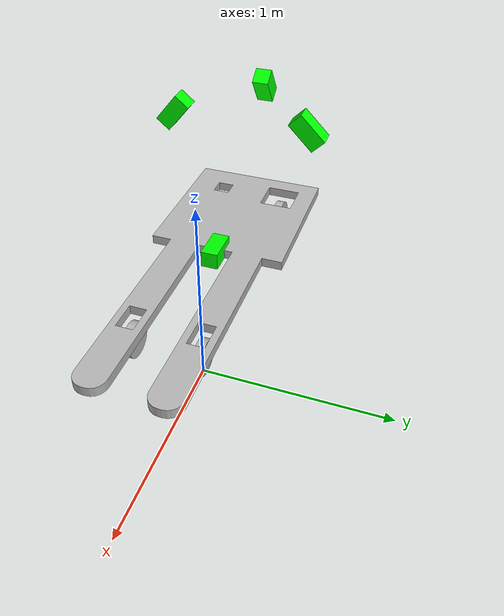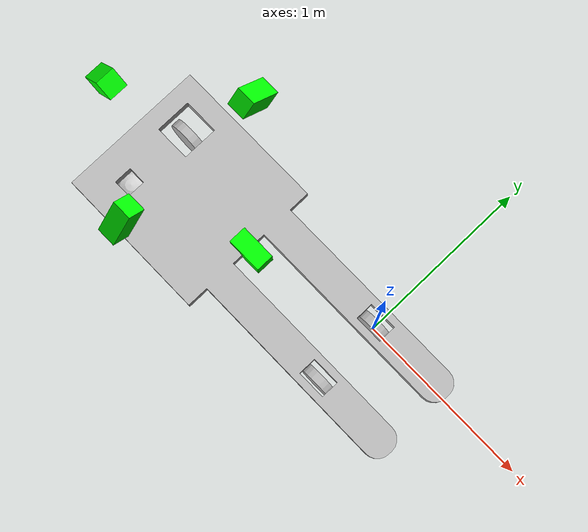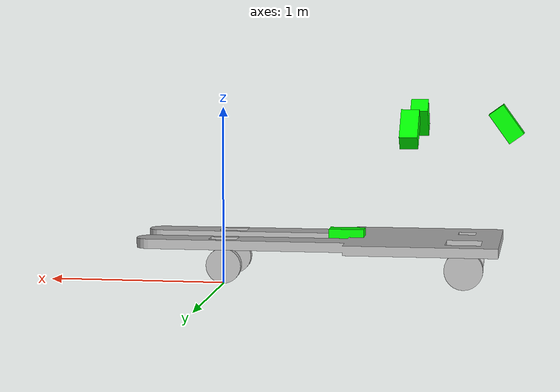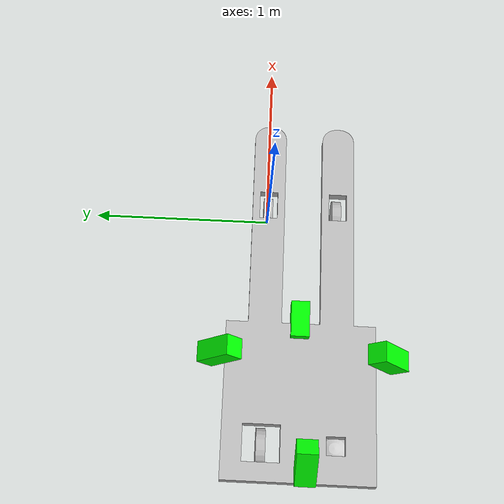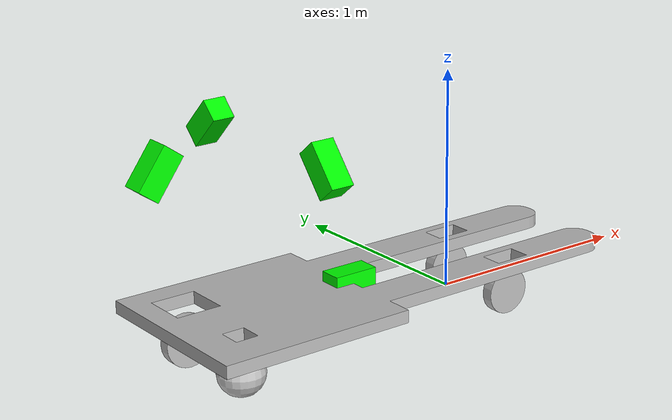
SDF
<?xml version="1.0" ?>
<sdf version="1.6">
  <model name="forklift">
    <static>false</static>

    <!-- Main robot body: rename 'chassis' to 'base_link' -->
    <link name="base_link">
      <!-- Raised above the ground -->
      <pose>0 0.0 0.4 0 0 0</pose>
      <inertial>
        <mass>10</mass>
        <pose>0 0 0 0 0 0</pose>
        <inertia>
          <ixx>1.6</ixx>  <iyy>3.4</iyy>  <izz>4.2</izz>
          <ixy>0</ixy>    <ixz>0</ixz>    <iyz>0</iyz>
        </inertia>
      </inertial>

      <collision name="body_collision">
        <!-- SAME offset and rotation you used for the visual -->
        <pose>0 0.0 -0.2 0 0 3.14159</pose>

        <geometry>
          <mesh>
            <!-- use package:// or model:// once the mesh is installed; file:// is fine for testing -->
            <!-- kina_body_1_0_simple.stl kina_body_1_1.stl -->
            <uri>file:///home/saidul/Desktop/fork_ws/src/harmonic_sim/meshes/kina_body_1_0_simple.stl</uri>
            <scale>0.001 0.001 0.001</scale>
          </mesh>
        </geometry>
      </collision>

        <!-- NEW forklift body visual -->
    <visual name="body_visual">
      <pose>0 0.0 -0.2 0 0 3.14159</pose>        <!-- offset if STL origin ≠ chassis origin -->
      <geometry>
        <mesh>
          <!-- “model://forklift” resolves to the folder that holds model.config -->
          <uri>file:///home/saidul/Desktop/fork_ws/src/harmonic_sim/meshes/kina_body_1_0_simple.stl</uri>
          <scale>0.001 0.001 0.001</scale>
        </mesh>

      </geometry>
      </visual>

      <!-- Lidar sensor is part of base_link, but publishes data in 'lidar_link' frame -->
      <sensor name="lidar_sensor" type="ray">
        <pose>0 0 0.2 0 0 3.14159</pose>
        <update_rate>10</update_rate>
        <visualize>false</visualize> <!-- true -->
        <always_on>true</always_on>
        <ray>
          <scan>
            <horizontal>
              <samples>360</samples>
              <resolution>1</resolution>
              <min_angle>-3.14159</min_angle>
              <max_angle>3.14159</max_angle>
            </horizontal>
          </scan>
          <range>
            <min>0.3</min>
            <max>20</max>
            <resolution>0.01</resolution>
          </range>
        </ray>
        <plugin name="lidar_plugin" filename="libgazebo_ros_ray_sensor.so">
          <ros>
            <use_sim_time>true</use_sim_time>
            <remapping>~/out:=scan</remapping>
          </ros>
          <output_type>sensor_msgs/LaserScan</output_type>
          <frame_name>lidar_link</frame_name>
        </plugin>
      </sensor>

    </link>

<!--  Front camera (mirrored & now +180° about Z) -->
<link name="front_cam_link">
  <!-- new pose: -1.585  -0.19  0.91  0  2.20  (3.14 + 3.14159 = 6.28159) -->
  <pose>-1.585 -0.19 0.91 0 2.20 6.28159</pose>
  <inertial>
    <mass>0.05</mass>
    <inertia>
      <ixx>1e-5</ixx><iyy>1e-5</iyy><izz>1e-5</izz>
      <ixy>0</ixy><ixz>0</ixz><iyz>0</iyz>
    </inertia>
  </inertial>

  <visual name="front_cam_housing">
    <geometry>
      <box>
        <size>0.20 0.10 0.10</size>
      </box>
    </geometry>
    <material>
      <ambient>0 1 0 1</ambient>
      <diffuse>0 1 0 1</diffuse>
    </material>
  </visual>

  <sensor name="front_cam_depth" type="depth">
    <pose>0 0 0 0 0 0</pose>
    <update_rate>30</update_rate>
    <visualize>true</visualize>
    <always_on>true</always_on>

    <camera>
      <horizontal_fov>1.3962634</horizontal_fov>
      <image>
        <width>640</width>
        <height>480</height>
        <format>R8G8B8</format>
      </image>
      <clip>
        <near>0.1</near>
        <far>10</far>
      </clip>
      <depth_camera/>
    </camera>

    <plugin name="front_cam_controller" filename="libgazebo_ros_camera.so">
      <ros>
        <namespace>front_cam</namespace>
        <use_sim_time>true</use_sim_time>
      </ros>
      <camera_name>front_cam</camera_name>
      <image_topic_name>image_raw</image_topic_name>
      <depth_image_topic_name>depth/image_raw</depth_image_topic_name>
      <point_cloud_topic_name>points</point_cloud_topic_name>
      <camera_info_topic_name>camera_info</camera_info_topic_name>
      <frame_name>front_cam_link</frame_name>
      <point_cloud_cutoff>0.2</point_cloud_cutoff>
    </plugin>
  </sensor>
</link>

<joint name="front_cam_joint" type="fixed">
  <parent>base_link</parent>
  <child>front_cam_link</child>
</joint>

<!--  Back camera (mirrored & now +180° about Z) -->
<link name="back_cam_link">
  <!-- new pose: -0.685  -0.19  0.25  0  0  (3.14 + 3.14159 = 6.28159) -->
  <pose>-0.685 -0.19 0.25 0 0 6.28159</pose>
  <inertial>
    <mass>0.05</mass>
    <inertia>
      <ixx>1e-5</ixx><iyy>1e-5</iyy><izz>1e-5</izz>
      <ixy>0</ixy><ixz>0</ixz><iyz>0</iyz>
    </inertia>
  </inertial>

  <visual name="back_cam_housing">
    <geometry>
      <box>
        <size>0.20 0.10 0.10</size>
      </box>
    </geometry>
    <material>
      <ambient>0 1 0 1</ambient>
      <diffuse>0 1 0 1</diffuse>
    </material>
  </visual>

  <sensor name="back_cam_depth" type="depth">
    <pose>0 0 0 0 0 0</pose>
    <update_rate>30</update_rate>
    <visualize>true</visualize>
    <always_on>true</always_on>

    <camera>
      <horizontal_fov>1.3962634</horizontal_fov>
      <image>
        <width>640</width>
        <height>480</height>
        <format>R8G8B8</format>
      </image>
      <clip>
        <near>0.1</near>
        <far>10</far>
      </clip>
      <depth_camera/>
    </camera>

    <plugin name="back_cam_controller" filename="libgazebo_ros_camera.so">
      <ros>
        <namespace>back_cam</namespace>
        <use_sim_time>true</use_sim_time>
      </ros>
      <camera_name>back_cam</camera_name>
      <image_topic_name>image_raw</image_topic_name>
      <depth_image_topic_name>depth/image_raw</depth_image_topic_name>
      <point_cloud_topic_name>points</point_cloud_topic_name>
      <camera_info_topic_name>camera_info</camera_info_topic_name>
      <frame_name>back_cam_link</frame_name>
      <point_cloud_cutoff>0.2</point_cloud_cutoff>
    </plugin>
  </sensor>
</link>

<joint name="back_cam_joint" type="fixed">
  <parent>base_link</parent>
  <child>back_cam_link</child>
</joint>

<!--  Left camera (mirrored & now +180° about Z) -->
<link name="left_cam_link">
  <!-- new pose: -1.07  -0.57  0.91  0  2.26  (–1.57 + 3.14159 = 1.57159) -->
  <pose>-1.07 -0.57 0.91 0 2.26 1.57159</pose>
  <inertial>
    <mass>0.05</mass>
    <inertia>
      <ixx>1e-5</ixx><iyy>1e-5</iyy><izz>1e-5</izz>
      <ixy>0</ixy><ixz>0</ixz><iyz>0</iyz>
    </inertia>
  </inertial>

  <visual name="left_cam_housing">
    <geometry>
      <box>
        <size>0.20 0.10 0.10</size>
      </box>
    </geometry>
    <material>
      <ambient>0 1 0 1</ambient>
      <diffuse>0 1 0 1</diffuse>
    </material>
  </visual>

  <sensor name="left_cam_depth" type="depth">
    <pose>0 0 0 0 0 0</pose>
    <update_rate>30</update_rate>
    <visualize>true</visualize>
    <always_on>true</always_on>

    <camera>
      <horizontal_fov>1.3962634</horizontal_fov>
      <image>
        <width>640</width>
        <height>480</height>
        <format>R8G8B8</format>
      </image>
      <clip>
        <near>0.1</near>
        <far>10</far>
      </clip>
      <depth_camera/>
    </camera>

    <plugin name="left_cam_controller" filename="libgazebo_ros_camera.so">
      <ros>
        <namespace>left_cam</namespace>
        <use_sim_time>true</use_sim_time>
      </ros>
      <camera_name>left_cam</camera_name>
      <image_topic_name>image_raw</image_topic_name>
      <depth_image_topic_name>depth/image_raw</depth_image_topic_name>
      <point_cloud_topic_name>points</point_cloud_topic_name>
      <camera_info_topic_name>camera_info</camera_info_topic_name>
      <frame_name>left_cam_link</frame_name>
      <point_cloud_cutoff>0.2</point_cloud_cutoff>
    </plugin>
  </sensor>
</link>

<joint name="left_cam_joint" type="fixed">
  <parent>base_link</parent>
  <child>left_cam_link</child>
</joint>

<!--  Right camera (mirrored & now +180° about Z) -->
<link name="right_cam_link">
  <!-- new pose: -1.07   0.23  0.91  0  2.357  (1.57 + 3.14159 = 4.71159) -->
  <pose>-1.07 0.23 0.91 0 2.357 4.71159</pose>
  <inertial>
    <mass>0.05</mass>
    <inertia>
      <ixx>1e-5</ixx><iyy>1e-5</iyy><izz>1e-5</izz>
      <ixy>0</ixy><ixz>0</ixz><iyz>0</iyz>
    </inertia>
  </inertial>

  <visual name="right_cam_housing">
    <geometry>
      <box>
        <size>0.20 0.10 0.10</size>
      </box>
    </geometry>
    <material>
      <ambient>0 1 0 1</ambient>
      <diffuse>0 1 0 1</diffuse>
    </material>
  </visual>

  <sensor name="right_cam_depth" type="depth">
    <pose>0 0 0 0 0 0</pose>
    <update_rate>30</update_rate>
    <visualize>true</visualize>
    <always_on>true</always_on>

    <camera>
      <horizontal_fov>1.3962634</horizontal_fov>
      <image>
        <width>640</width>
        <height>480</height>
        <format>R8G8B8</format>
      </image>
      <clip>
        <near>0.1</near>
        <far>10</far>
      </clip>
      <depth_camera/>
    </camera>

    <plugin name="right_cam_controller" filename="libgazebo_ros_camera.so">
      <ros>
        <namespace>right_cam</namespace>
        <use_sim_time>true</use_sim_time>
      </ros>
      <camera_name>right_cam</camera_name>
      <image_topic_name>image_raw</image_topic_name>
      <depth_image_topic_name>depth/image_raw</depth_image_topic_name>
      <point_cloud_topic_name>points</point_cloud_topic_name>
      <camera_info_topic_name>camera_info</camera_info_topic_name>
      <frame_name>right_cam_link</frame_name>
      <point_cloud_cutoff>0.2</point_cloud_cutoff>
    </plugin>
  </sensor>
</link>

<joint name="right_cam_joint" type="fixed">
  <parent>base_link</parent>
  <child>right_cam_link</child>
</joint>

    <!-- Front Left Support Wheel -->
    <link name="front_left_wheel">
      <pose>0 0.0 0.1 1.5708 0 0</pose>
      <collision name="collision">
        <geometry>
          <cylinder>
            <radius>0.1</radius>
            <length>0.05</length>
          </cylinder>
        </geometry>
        <surface>
          <friction>
            <ode>
              <!-- Static & dynamic friction coefficients 3.0 is high (rubber-on-concrete -->
              <mu>3.0</mu>
              <mu2>3.0</mu2>
              <!-- Aligns the friction pyramid with the wheel’s rolling direction, preventing sideways “ice-skating -->
              <fdir1>0 1 0</fdir1>
              <!-- Zero removes the built-in slip compliance so the tyre keeps static friction -->
              <slip1>0.0</slip1>
              <slip2>0.0</slip2>
            </ode>
          </friction>

        </surface>
      </collision>
      <visual name="visual">
        <geometry>
          <cylinder>
            <radius>0.1</radius>
            <length>0.05</length>
          </cylinder>
        </geometry>
      </visual>
    </link>

    <!-- Front Right Support Wheel -->
    <link name="front_right_wheel">
      <pose>0 -0.39 0.1 1.5708 0 0</pose>
      <collision name="collision">
        <geometry>
          <cylinder>
            <radius>0.1</radius>
            <length>0.05</length>
          </cylinder>
        </geometry>
        <surface>
          <friction>
            <ode>
              <!-- Static & dynamic friction coefficients 3.0 is high (rubber-on-concrete -->
              <mu>3.0</mu>
              <mu2>3.0</mu2>
              <!-- Aligns the friction pyramid with the wheel’s rolling direction, preventing sideways “ice-skating -->
              <fdir1>0 1 0</fdir1>
              <!-- Zero removes the built-in slip compliance so the tyre keeps static friction -->
              <slip1>0.0</slip1>
              <slip2>0.0</slip2>
            </ode>
          </friction>

        </surface>
      </collision>
      <visual name="visual">
        <geometry>
          <cylinder>
            <radius>0.1</radius>
            <length>0.05</length>
          </cylinder>
        </geometry>
      </visual>
    </link>

    <!-- Passive support ball (right of the drive wheel) -->
    <link name="support_ball">
      <!-- Same x, slightly +y, and lower z than the drive wheel -->
      <pose>-1.36 -0.39 0.1 0 0 0</pose>

      <!-- A 0.16 m diameter steel ball -->
      <collision name="collision">
        <geometry>
          <sphere><radius>0.10</radius></sphere>
        </geometry>
        <surface>
          <!-- Low friction so it slides/rolls easily -->
          <friction>
            <ode>
              <!-- Static & dynamic friction coefficients 3.0 is high (rubber-on-concrete -->
              <mu>3.0</mu>
              <mu2>3.0</mu2>
              <!-- Aligns the friction pyramid with the wheel’s rolling direction, preventing sideways “ice-skating -->
              <fdir1>0 1 0</fdir1>
              <!-- Zero removes the built-in slip compliance so the tyre keeps static friction -->
              <slip1>0.0</slip1>
              <slip2>0.0</slip2>
            </ode>
          </friction>

        </surface>
      </collision>

      <visual name="visual">
        <geometry>
          <sphere><radius>0.10</radius></sphere>
        </geometry>
        <material>
          <ambient>0.8 0.8 0.8 1</ambient>
          <diffuse>0.8 0.8 0.8 1</diffuse>
          <specular>0.2 0.2 0.2 1</specular>  <!-- subtle highlight -->
          <emissive>0 0 0 1</emissive>
        </material>
      </visual>
    </link>

    <!-- Steering Link: intermediary link for drive wheel steering -->
    <link name="steering_link">
      <pose>-1.36 0.0 0.1 1.5708 0 0</pose>
    </link>

    <!-- Rear Drive Wheel -->
    <link name="drive_wheel">
      <pose>-1.36 0.0 0.1 1.5708 0 0</pose>
      <collision name="collision">
        <geometry>
          <cylinder>
            <radius>0.11</radius>
            <length>0.05</length>
          </cylinder>
        </geometry>
        <surface>
          <friction>
            <ode>
              <!-- Static & dynamic friction coefficients 3.0 is high (rubber-on-concrete -->
              <mu>4.0</mu>
              <mu2>4.0</mu2>
              <!-- Aligns the friction pyramid with the wheel’s rolling direction, preventing sideways “ice-skating -->
              <fdir1>0 1 0</fdir1>
              <!-- Zero removes the built-in slip compliance so the tyre keeps static friction -->
              <slip1>0.0</slip1>
              <slip2>0.0</slip2>
            </ode>
          </friction>

        </surface>
      </collision>
      <visual name="visual">
        <geometry>
          <cylinder>
            <radius>0.11</radius>
            <length>0.05</length>
          </cylinder>
        </geometry>
      </visual>
    </link>

    <!-- Joints: replace 'chassis' with 'base_link' as parent -->
    <joint name="front_left_joint" type="revolute">
      <parent>base_link</parent>
      <child>front_left_wheel</child>
      <pose>0.0 -0.0 0.0 1.5708 0 0</pose>
      <axis>
        <xyz>0 1 0</xyz>
      </axis>
    </joint>

    <joint name="front_right_joint" type="revolute">
      <parent>base_link</parent>
      <child>front_right_wheel</child>
      <pose>0.0 0.0 0.0 1.5708 0 0</pose>
      <axis>
        <xyz>0 1 0</xyz>
      </axis>
    </joint>

    <joint name="support_ball_joint" type="revolute">
      <parent>base_link</parent>
      <child>support_ball</child>
      <pose>0 0.0 0.0 0 0 0</pose>
    </joint>

    <!-- Left wheel joint for differential drive -->
    <joint name="left_wheel_joint" type="revolute">
      <parent>base_link</parent>
      <child>front_left_wheel</child>
      <axis>
        <xyz>0 1 0</xyz>
        <dynamics>
          <damping>0.2</damping>
          <friction>0.1</friction>
        </dynamics>
      </axis>
    </joint>

    <!-- Right wheel joint for differential drive -->
    <joint name="right_wheel_joint" type="revolute">
      <parent>base_link</parent>
      <child>front_right_wheel</child>
      <axis>
        <xyz>0 1 0</xyz>
        <dynamics>
          <damping>0.2</damping>
          <friction>0.1</friction>
        </dynamics>
      </axis>
    </joint>

    <joint name="steering_joint" type="revolute">
      <parent>base_link</parent>
      <child>steering_link</child>
      <pose>-0.0 0 0.0 1.5708 0 3.14159</pose>
      <axis>
        <xyz>0 0 1</xyz>
        <limit>
          <lower>-1000</lower>
          <upper>1000</upper>
        </limit>
        <dynamics>
          <damping>5.5</damping>
          <friction>0.1</friction>
        </dynamics>
      </axis>
    </joint>

    <joint name="drive_joint" type="revolute">
      <parent>steering_link</parent>
      <child>drive_wheel</child>
      <pose>-0.0 0 0.0 1.5708 0 0</pose>
      <axis>
        <xyz>0 1 0</xyz>
        <limit>
          <lower>-1000</lower>
          <upper>1000</upper>
        </limit>
        <dynamics>
          <damping>8.5</damping>
          <friction>0.1</friction>
        </dynamics>
      </axis>
    </joint>

    <!-- Differential drive plugin for ROS2 navigation -->
    <plugin name="differential_drive_controller" filename="libgazebo_ros_diff_drive.so">
      <ros>
        <namespace>/</namespace>
        <remapping>cmd_vel:=cmd_vel</remapping>
        <remapping>odom:=odom</remapping>
      </ros>

      <!-- Wheel Information -->
      <left_joint>left_wheel_joint</left_joint>
      <right_joint>right_wheel_joint</right_joint>

      <!-- Kinematics -->
      <wheel_separation>0.39</wheel_separation>
      <wheel_diameter>0.2</wheel_diameter>

      <!-- Limits -->
      <max_wheel_torque>20</max_wheel_torque>
      <max_wheel_acceleration>1.0</max_wheel_acceleration>

      <!-- Output -->
      <publish_odom>true</publish_odom>
      <publish_odom_tf>true</publish_odom_tf>
      <publish_wheel_tf>true</publish_wheel_tf>

      <odometry_frame>odom</odometry_frame>
      <robot_base_frame>base_link</robot_base_frame>
    </plugin>

  </model>
</sdf>
